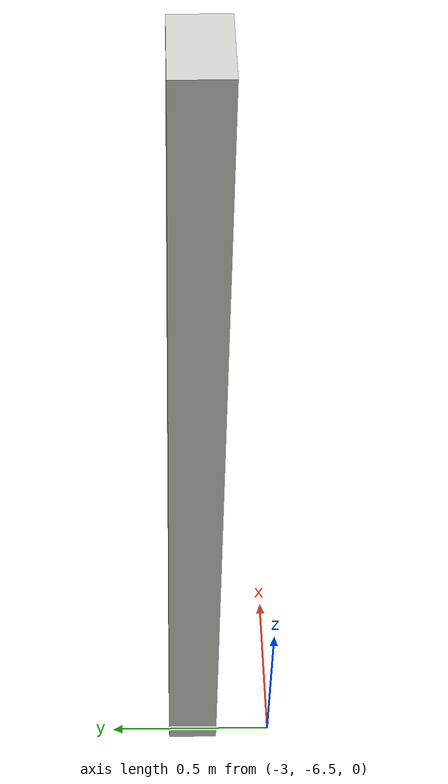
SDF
<?xml version='1.0'?>
<sdf version='1.7'>
  <model name='gap-filler-tile'>
    <pose>-1.51438 -3.1656 0 0 -0 0</pose>
    <link name='Wall_4'>
      <collision name='Wall_4_Collision'>
        <geometry>
          <box>
            <size>0.25 0.15 2.5</size>
          </box>
        </geometry>
        <pose>0 0 1.25 0 -0 0</pose>
      </collision>
      <visual name='Wall_4_Visual'>
        <pose>0 0 1.25 0 -0 0</pose>
        <geometry>
          <box>
            <size>0.25 0.15 2.5</size>
          </box>
        </geometry>
        <material>
          <script>
            <uri>file://media/materials/scripts/gazebo.material</uri>
            <name>Gazebo/CeilingTiled</name>
          </script>
          <ambient>1 1 1 1</ambient>
        </material>
        <meta>
          <layer>0</layer>
        </meta>
      </visual>
      <pose>-1.38938 -3.0906 0 0 -0 3.14159</pose>
    </link>
    <static>1</static>
  </model>
</sdf>
